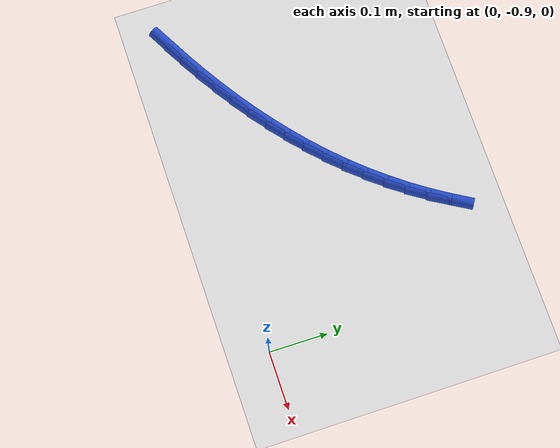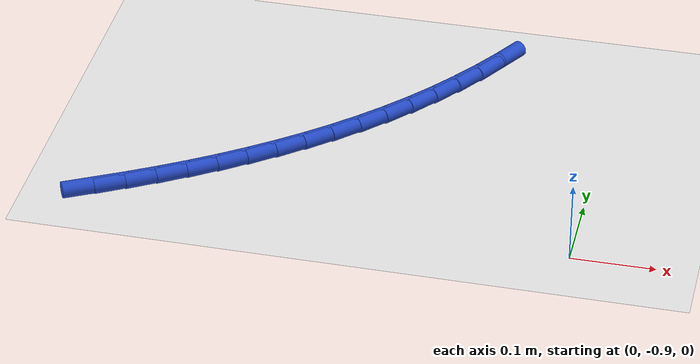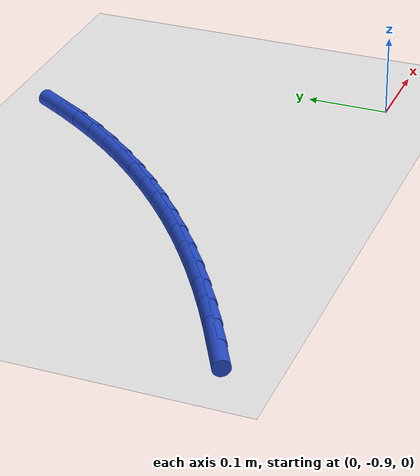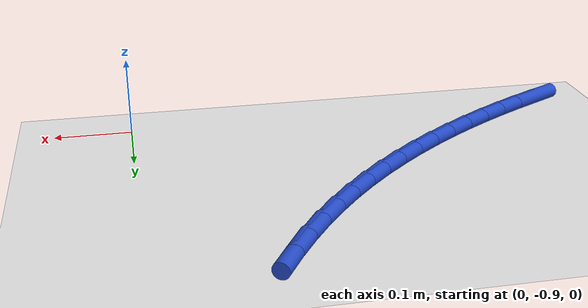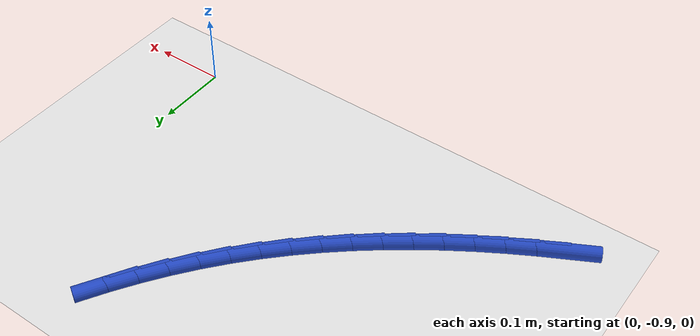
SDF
<sdf version="1.6">
 <world name="default">
  <model name="ground_plane">
   <static>1</static>
   <link name="link">
    <collision name="collision">
     <geometry><plane><normal>0 0 1</normal><size>100 100</size></plane></geometry>
     <surface><friction><ode><mu>100</mu><mu2>50</mu2></ode></friction></surface>
    </collision>
    <visual name="visual">
     <cast_shadows>0</cast_shadows>
     <geometry><plane><normal>0 0 1</normal><size>100 100</size></plane></geometry>
     <material>
      <script><uri>file://media/materials/scripts/gazebo.material</uri><name>Gazebo/WhiteGlow</name></script>
     </material>
    </visual>
   </link>
  </model>
  <model name="line">
   <link name="link_150">
    <pose>-0.5660668978810913 -0.8945616254721909 0.01 0 1.57 0.4907738862141684</pose>
    <collision name="collision">
     <geometry><cylinder><radius>0.01</radius><length>0.08</length></cylinder></geometry>
    </collision>
    <visual name="visual">
     <material>
      <script><name>Gazebo/Blue</name><uri>file://media/materials/scripts/gazebo.material</uri></script>
     </material>
     <geometry><cylinder><radius>0.01</radius><length>0.08</length></cylinder></geometry>
    </visual>
   </link>
   <link name="link_151">
    <pose>-0.5332028520728624 -0.8769996506866269 0.01 0 1.57 0.5167102777849695</pose>
    <collision name="collision">
     <geometry><cylinder><radius>0.01</radius><length>0.08</length></cylinder></geometry>
    </collision>
    <visual name="visual">
     <material>
      <script><name>Gazebo/Blue</name><uri>file://media/materials/scripts/gazebo.material</uri></script>
     </material>
     <geometry><cylinder><radius>0.01</radius><length>0.08</length></cylinder></geometry>
    </visual>
   </link>
   <link name="link_152">
    <pose>-0.5007502911787797 -0.8585600457208433 0.01 0 1.57 0.5440675111578074</pose>
    <collision name="collision">
     <geometry><cylinder><radius>0.01</radius><length>0.08</length></cylinder></geometry>
    </collision>
    <visual name="visual">
     <material>
      <script><name>Gazebo/Blue</name><uri>file://media/materials/scripts/gazebo.material</uri></script>
     </material>
     <geometry><cylinder><radius>0.01</radius><length>0.08</length></cylinder></geometry>
    </visual>
   </link>
   <link name="link_153">
    <pose>-0.46878636577704663 -0.8392227594484111 0.01 0 1.57 0.5729428361679882</pose>
    <collision name="collision">
     <geometry><cylinder><radius>0.01</radius><length>0.08</length></cylinder></geometry>
    </collision>
    <visual name="visual">
     <material>
      <script><name>Gazebo/Blue</name><uri>file://media/materials/scripts/gazebo.material</uri></script>
     </material>
     <geometry><cylinder><radius>0.01</radius><length>0.08</length></cylinder></geometry>
    </visual>
   </link>
   <link name="link_154">
    <pose>-0.4373901293438575 -0.8189681593434149 0.01 0 1.57 0.603418652741262</pose>
    <collision name="collision">
     <geometry><cylinder><radius>0.01</radius><length>0.08</length></cylinder></geometry>
    </collision>
    <visual name="visual">
     <material>
      <script><name>Gazebo/Blue</name><uri>file://media/materials/scripts/gazebo.material</uri></script>
     </material>
     <geometry><cylinder><radius>0.01</radius><length>0.08</length></cylinder></geometry>
    </visual>
   </link>
   <link name="link_155">
    <pose>-0.40664063535540884 -0.7977766128799427 0.01 0 1.57 0.6355748278965101</pose>
    <collision name="collision">
     <geometry><cylinder><radius>0.01</radius><length>0.08</length></cylinder></geometry>
    </collision>
    <visual name="visual">
     <material>
      <script><name>Gazebo/Blue</name><uri>file://media/materials/scripts/gazebo.material</uri></script>
     </material>
     <geometry><cylinder><radius>0.01</radius><length>0.08</length></cylinder></geometry>
    </visual>
   </link>
   <link name="link_156">
    <pose>-0.37661693728789514 -0.7756284875320799 0.01 0 1.57 0.6694863590671759</pose>
    <collision name="collision">
     <geometry><cylinder><radius>0.01</radius><length>0.08</length></cylinder></geometry>
    </collision>
    <visual name="visual">
     <material>
      <script><name>Gazebo/Blue</name><uri>file://media/materials/scripts/gazebo.material</uri></script>
     </material>
     <geometry><cylinder><radius>0.01</radius><length>0.08</length></cylinder></geometry>
    </visual>
   </link>
   <link name="link_157">
    <pose>-0.3473980886175109 -0.7525041507739121 0.01 0 1.57 0.705220494785612</pose>
    <collision name="collision">
     <geometry><cylinder><radius>0.01</radius><length>0.08</length></cylinder></geometry>
    </collision>
    <visual name="visual">
     <material>
      <script><name>Gazebo/Blue</name><uri>file://media/materials/scripts/gazebo.material</uri></script>
     </material>
     <geometry><cylinder><radius>0.01</radius><length>0.08</length></cylinder></geometry>
    </visual>
   </link>
   <link name="link_158">
    <pose>-0.3190631428204515 -0.7283839700795255 0.01 0 1.57 0.7428332857073362</pose>
    <collision name="collision">
     <geometry><cylinder><radius>0.01</radius><length>0.08</length></cylinder></geometry>
    </collision>
    <visual name="visual">
     <material>
      <script><name>Gazebo/Blue</name><uri>file://media/materials/scripts/gazebo.material</uri></script>
     </material>
     <geometry><cylinder><radius>0.01</radius><length>0.08</length></cylinder></geometry>
    </visual>
   </link>
   <link name="link_159">
    <pose>-0.2916911533729112 -0.7032483129230057 0.01 0 1.57 0.7823655781101038</pose>
    <collision name="collision">
     <geometry><cylinder><radius>0.01</radius><length>0.08</length></cylinder></geometry>
    </collision>
    <visual name="visual">
     <material>
      <script><name>Gazebo/Blue</name><uri>file://media/materials/scripts/gazebo.material</uri></script>
     </material>
     <geometry><cylinder><radius>0.01</radius><length>0.08</length></cylinder></geometry>
    </visual>
   </link>
   <link name="link_160">
    <pose>-0.26536117375108625 -0.6770775467784397 0.01 0 1.57 0.8238385201009679</pose>
    <collision name="collision">
     <geometry><cylinder><radius>0.01</radius><length>0.08</length></cylinder></geometry>
    </collision>
    <visual name="visual">
     <material>
      <script><name>Gazebo/Blue</name><uri>file://media/materials/scripts/gazebo.material</uri></script>
     </material>
     <geometry><cylinder><radius>0.01</radius><length>0.08</length></cylinder></geometry>
    </visual>
   </link>
   <link name="link_161">
    <pose>-0.2401522574311711 -0.6498520391199134 0.01 0 1.57 0.8670363070984166</pose>
    <collision name="collision">
     <geometry><cylinder><radius>0.01</radius><length>0.08</length></cylinder></geometry>
    </collision>
    <visual name="visual">
     <material>
      <script><name>Gazebo/Blue</name><uri>file://media/materials/scripts/gazebo.material</uri></script>
     </material>
     <geometry><cylinder><radius>0.01</radius><length>0.08</length></cylinder></geometry>
    </visual>
   </link>
   <link name="link_162">
    <pose>-0.2161383101364602 -0.6215582751255028 0.01 0 1.57 0.910080648554541</pose>
    <collision name="collision">
     <geometry><cylinder><radius>0.01</radius><length>0.08</length></cylinder></geometry>
    </collision>
    <visual name="visual">
     <material>
      <script><name>Gazebo/Blue</name><uri>file://media/materials/scripts/gazebo.material</uri></script>
     </material>
     <geometry><cylinder><radius>0.01</radius><length>0.08</length></cylinder></geometry>
    </visual>
   </link>
   <link name="link_163">
    <pose>-0.19334794476253916 -0.592236566976676 0.01 0 1.57 0.9520321942977683</pose>
    <collision name="collision">
     <geometry><cylinder><radius>0.01</radius><length>0.08</length></cylinder></geometry>
    </collision>
    <visual name="visual">
     <material>
      <script><name>Gazebo/Blue</name><uri>file://media/materials/scripts/gazebo.material</uri></script>
     </material>
     <geometry><cylinder><radius>0.01</radius><length>0.08</length></cylinder></geometry>
    </visual>
   </link>
   <link name="link_164">
    <pose>-0.17178624459856218 -0.5619551899622893 0.01 0 1.57 0.9929339966039152</pose>
    <collision name="collision">
     <geometry><cylinder><radius>0.01</radius><length>0.08</length></cylinder></geometry>
    </collision>
    <visual name="visual">
     <material>
      <script><name>Gazebo/Blue</name><uri>file://media/materials/scripts/gazebo.material</uri></script>
     </material>
     <geometry><cylinder><radius>0.01</radius><length>0.08</length></cylinder></geometry>
    </visual>
   </link>
   <link name="link_165">
    <pose>-0.15145809216155282 -0.530782657973262 0.01 0 1.57 1.0328482623735584</pose>
    <collision name="collision">
     <geometry><cylinder><radius>0.01</radius><length>0.08</length></cylinder></geometry>
    </collision>
    <visual name="visual">
     <material>
      <script><name>Gazebo/Blue</name><uri>file://media/materials/scripts/gazebo.material</uri></script>
     </material>
     <geometry><cylinder><radius>0.01</radius><length>0.08</length></cylinder></geometry>
    </visual>
   </link>
  </model>
 </world>
</sdf>
